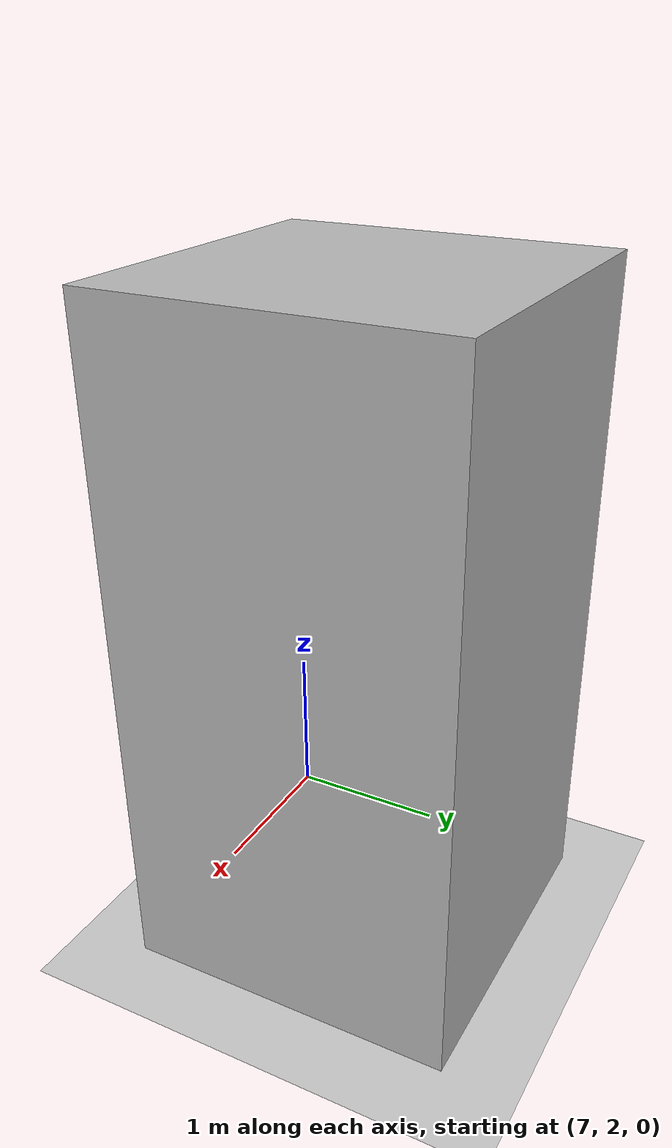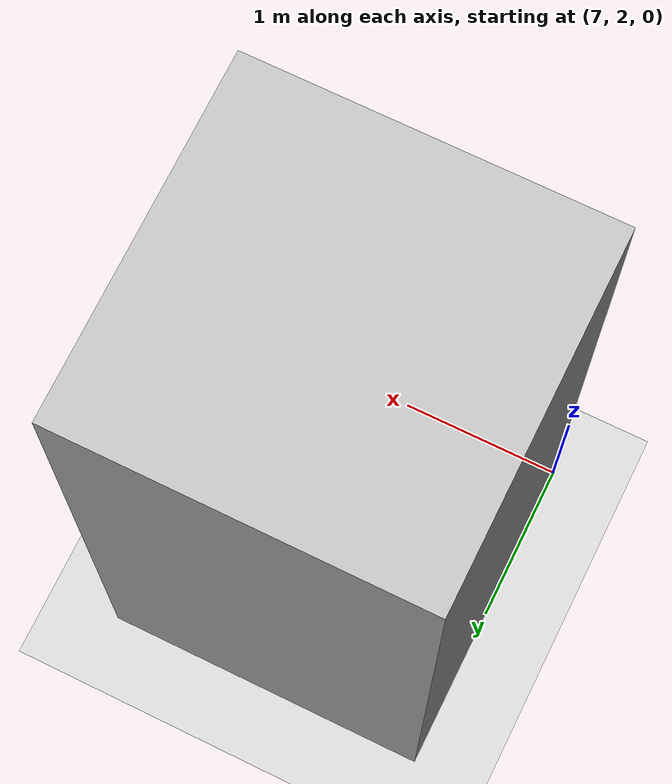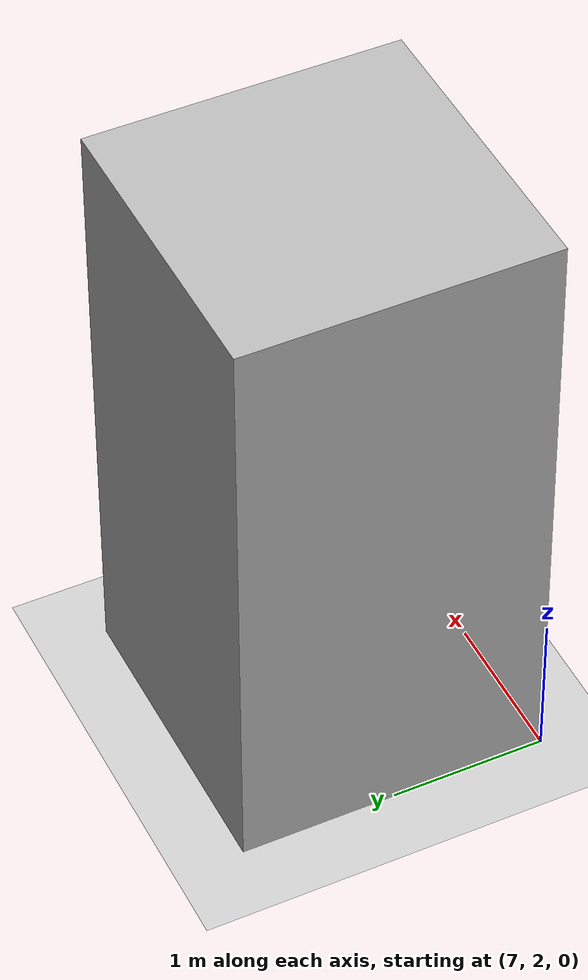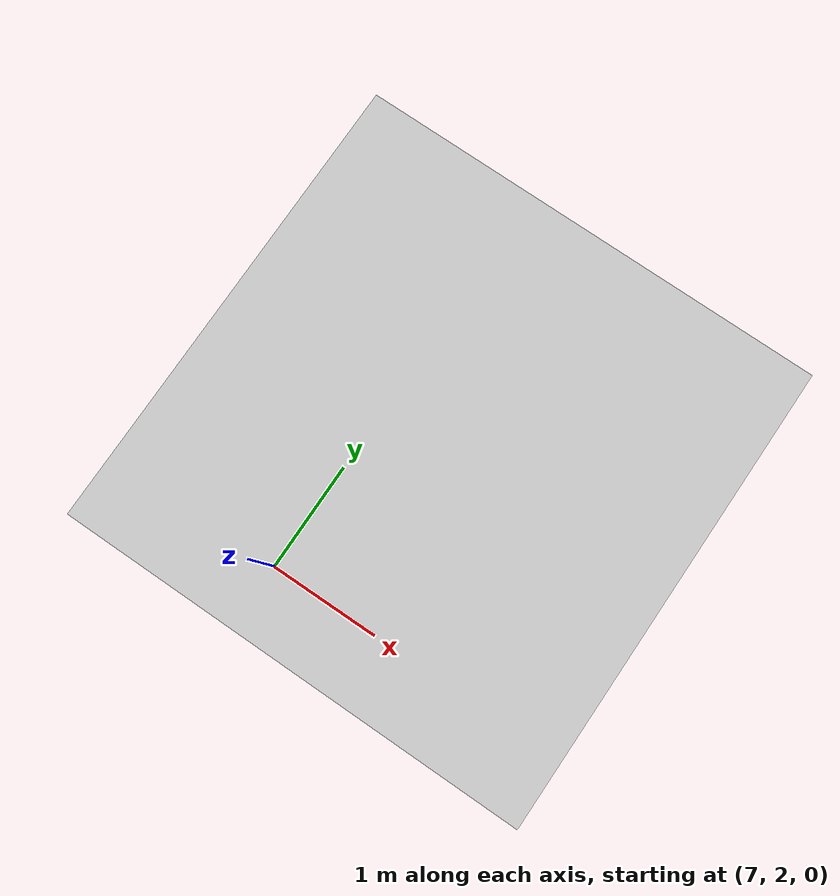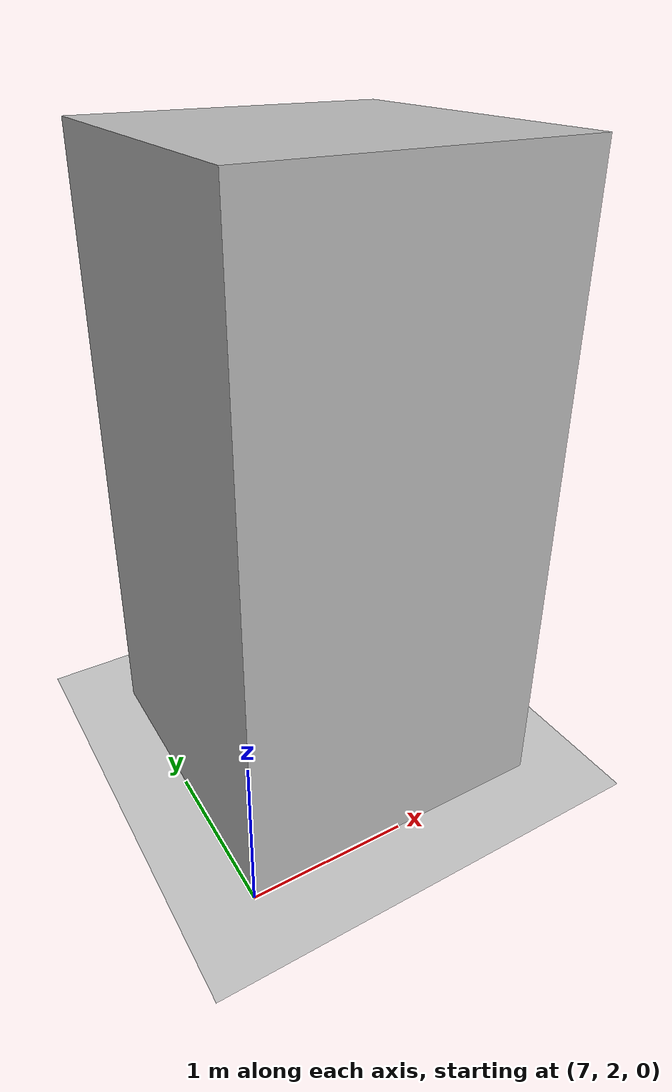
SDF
<?xml version="1.0"?>
<sdf version="1.9">
  <world name="fleet_world">
    <physics name="1ms" type="ignored">
      <max_step_size>0.001</max_step_size>
      <real_time_factor>1.0</real_time_factor>
    </physics>
    <plugin filename="gz-sim-physics-system" name="gz::sim::systems::Physics"/>
    <plugin filename="gz-sim-user-commands-system" name="gz::sim::systems::UserCommands"/>
    <plugin filename="gz-sim-scene-broadcaster-system" name="gz::sim::systems::SceneBroadcaster"/>
    <plugin filename="gz-sim-sensors-system" name="gz::sim::systems::Sensors">
      <render_engine>ogre2</render_engine>
    </plugin>
    <plugin filename="gz-sim-imu-system" name="gz::sim::systems::Imu"/>

    <gravity>0 0 -9.81</gravity>
    <scene><ambient>0.5 0.5 0.5 1</ambient><background>0.08 0.10 0.14 1</background></scene>

    <model name="ground">
      <static>true</static>
      <link name="link">
        <collision name="collision"><geometry><plane><normal>0 0 1</normal><size>100 100</size></plane></geometry></collision>
        <visual name="visual"><geometry><plane><normal>0 0 1</normal><size>100 100</size></plane></geometry></visual>
      </link>
    </model>

    <model name="obstacle_tower">
      <static>true</static><pose>8 3 2 0 0 0</pose>
      <link name="link">
        <collision name="c"><geometry><box><size>2 2 4</size></box></geometry></collision>
        <visual name="v"><geometry><box><size>2 2 4</size></box></geometry></visual>
      </link>
    </model>
  </world>
</sdf>
